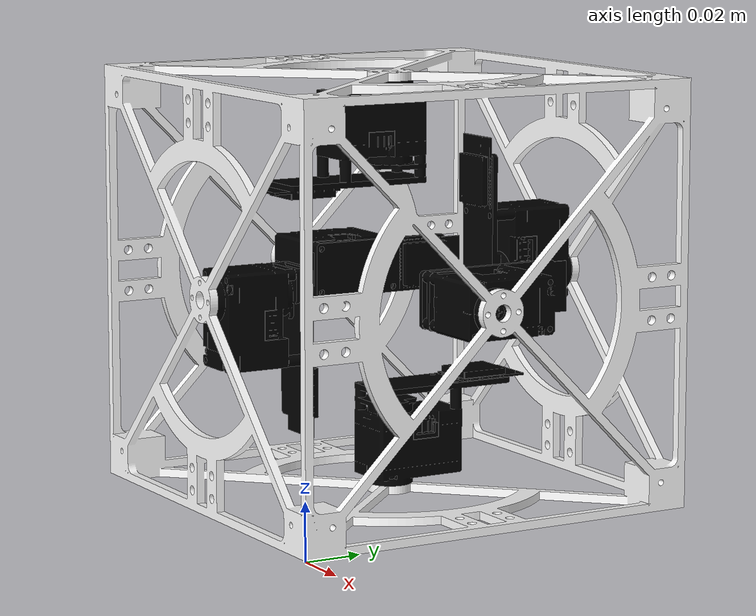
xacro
<?xml version="1.0"?>
<robot name="balancing_cube" xmlns:xacro="http://ros.org/wiki/xacro">
  <xacro:include filename="/home/terunuma/ros2-balancing-cube/src/cube_description/urdf/common_properties.xacro"/>
  <xacro:include filename="/home/terunuma/ros2-balancing-cube/src/cube_description/urdf/body.urdf.xacro"/>
  <xacro:include filename="/home/terunuma/ros2-balancing-cube/src/cube_description/urdf/module.urdf.xacro"/>
  <xacro:include filename="/home/terunuma/ros2-balancing-cube/src/cube_description/urdf/module_joint.urdf.xacro"/>

  <!-- Define parameters -->
  <xacro:arg name="color" default="grey"/>
  <xacro:property name="t" value="0.003"/>
  <xacro:property name="l" value="0.075"/>

  <link name="base_link"/>

  <!-- Joint Setting -->
  <joint name="body_joint" type="fixed">
    <parent link="base_link"/>
    <child  link="body_link"/>
  </joint>

  <xacro:module_joint parent="body_link" index="1">
    <origin xyz="${-l} ${l} ${t}" rpy = "0 0 0"/>
  </xacro:module_joint>
  <xacro:module_joint parent="body_link" index="2">
    <origin xyz="${-l} ${2*l-t} ${l}" rpy = "${pi/2} 0 0"/>
  </xacro:module_joint>
  <xacro:module_joint parent="body_link" index="3">
    <origin xyz="${-l} ${t} ${l}" rpy = "${-pi/2} 0 0"/>
  </xacro:module_joint>
  <xacro:module_joint parent="body_link" index="4">
    <origin xyz="${-2*l+t} ${l} ${l}" rpy = "0 ${pi/2} 0"/>
  </xacro:module_joint>
  <xacro:module_joint parent="body_link" index="5">
    <origin xyz="${-t} ${l} ${l}" rpy = "0 ${-pi/2} 0"/>
  </xacro:module_joint>
  <xacro:module_joint parent="body_link" index="6">
    <origin xyz="${-l} ${l} ${2*l-t}" rpy = "${pi} 0 0"/>
  </xacro:module_joint>

  <!-- Link Setting -->
  <xacro:body/>

  <xacro:module index="1"/>
  <xacro:module index="2"/>
  <xacro:module index="3"/>
  <xacro:module index="4"/>
  <xacro:module index="5"/>
  <xacro:module index="6"/>

</robot>

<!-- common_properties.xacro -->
<robot name="xacro_properties" xmlns:xacro="http://ros.org/wiki/xacro">

    <material name="black">
        <color rgba="0.0 0.0 0.0 1.0"/>
    </material>

    <material name="dark">
        <color rgba="0.3 0.3 0.3 1.0"/>
    </material>
    <material name="light_black">
        <color rgba="0.4 0.4 0.4 1.0"/>
    </material>

    <material name="blue">
        <color rgba="0.0 0.0 0.8 1.0"/>
    </material>

    <material name="green">
        <color rgba="0.0 0.8 0.0 1.0"/>
    </material>

    <material name="grey">
        <color rgba="0.5 0.5 0.5 1.0"/>
    </material>

    <material name="orange">
        <color rgba="${255/255} ${108/255} ${10/255} 1.0"/>
    </material>

    <material name="brown">
        <color rgba="${222/255} ${207/255} ${195/255} 1.0"/>
    </material>

    <material name="red">
        <color rgba="0.8 0.0 0.0 1.0"/>
    </material>

    <material name="white">
        <color rgba="1.0 1.0 1.0 1.0"/>
    </material>
</robot>

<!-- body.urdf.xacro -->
<robot xmlns:xacro="http://ros.org/wiki/xacro">

  <xacro:macro name="body">
  <!-- Link Setting -->
  <link name="body_link">
    <visual>
      <origin xyz="0 0 0" rpy="0 0 0"/>
      <geometry>
        <mesh filename="package://cube_description/meshes/body.stl" scale="0.001 0.001 0.001"/>
      </geometry>
      <material name="white"/>
    </visual>
  </link>
  </xacro:macro>

</robot>

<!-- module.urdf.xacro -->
<robot xmlns:xacro="http://ros.org/wiki/xacro">

  <xacro:macro name="module" params="index">
  <!-- Link Setting -->
  <link name="module${index}_link">
    <visual>
      <origin xyz="0 0 0" rpy="0 0 0"/>
      <geometry>
        <mesh filename="package://cube_description/meshes/module.stl" scale="0.001 0.001 0.001"/>
      </geometry>
      <material name="black"/>
    </visual>
  </link>
  </xacro:macro>

</robot>

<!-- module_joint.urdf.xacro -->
<robot xmlns:xacro="http://ros.org/wiki/xacro">

  <!-- Define macro for defining a module joint -->
  <xacro:macro name="module_joint" params="parent index *joint_origin">
    <joint name="module${index}_joint" type="revolute">
      <axis xyz="0 0 1"/>
      <xacro:insert_block name="joint_origin"/>
      <parent link="${parent}"/>
      <child link="module${index}_link"/>
      <limit lower="-${pi}" upper="${pi}" effort="30" velocity="10"/>
    </joint>
  </xacro:macro>

</robot>
